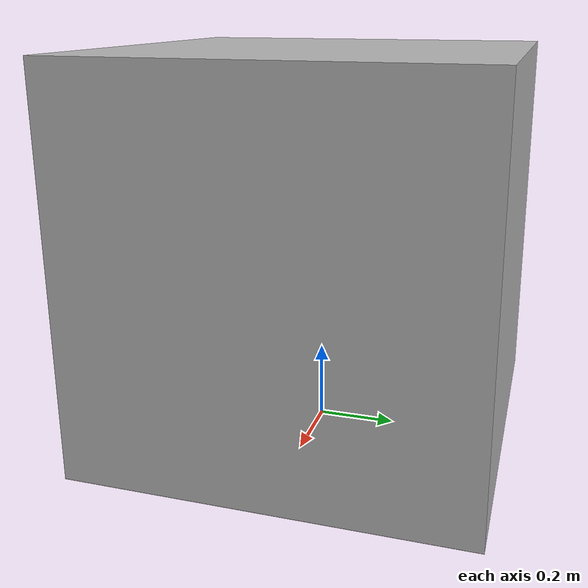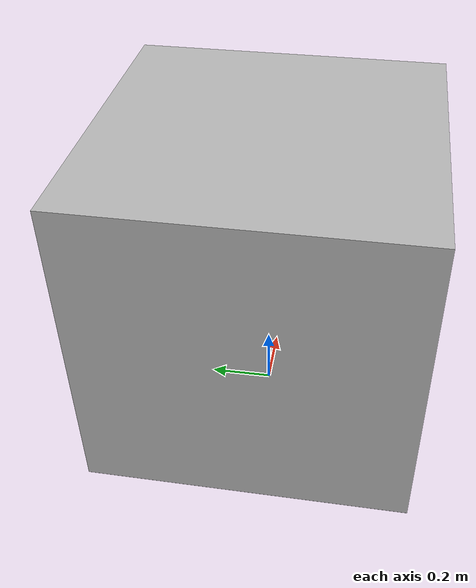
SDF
<?xml version='1.0'?>
<sdf version='1.6'>
  <model name='box_with_pusher'>
    <!-- A link to model the ground. Inertia values are not particularly
         important since the ground does not move. -->
    <link name='ground'>
      <inertial>
        <mass>1.0</mass>
        <inertia>
          <ixx>1.0</ixx>
          <ixy>0</ixy>
          <ixz>0</ixz>
          <iyy>1.0</iyy>
          <iyz>0</iyz>
          <izz>1.0</izz>
        </inertia>
      </inertial>
      <!-- TODO(SeanCurtis-TRI): the "vis" and "collision" suffixes will no
       longer be necessary when geometry roles are added. -->
      <visual name='ground_plane_vis'>
        <geometry>
          <plane>
            <normal>0.0 0.0 1.0</normal>
          </plane>
        </geometry>
      </visual>

      <collision name='ground_plane_collision'>
        <geometry>
          <plane>
            <normal>0.0 0.0 1.0</normal>
          </plane>
        </geometry>

        <surface>
          <friction>
            <ode>
              <mu>1.0</mu>
              <mu2>1.0</mu2>
            </ode>
          </friction>
        </surface>
      </collision>
    </link>

    <joint name='weld_ground' type='fixed'>
      <parent>world</parent>
      <child>ground</child>
    </joint>

    <!-- Ghost body of negligible mass. -->
    <link name='ghost_body'>
      <pose frame=''>0 0 0.5 0 0 0</pose>
      <inertial>
        <mass>1.0e-6</mass>
        <inertia>
          <ixx>1.0e-6</ixx>
          <ixy>0</ixy>
          <ixz>0</ixz>
          <iyy>1.0e-6</iyy>
          <iyz>0</iyz>
          <izz>1.0e-6</izz>
        </inertia>
      </inertial>
    </link>

    <!-- The x slider will have an actuator with a corresponding input port
         in our MultibodyPlant model so that we can apply an external force.
    -->
    <joint name='x_slider' type='prismatic'>
      <parent>world</parent>
      <child>ghost_body</child>
      <pose>0 0 0 0 0 0</pose>
      <axis>
        <xyz>1 0 0</xyz>
        <!-- Drake attaches an actuator to all joints with a non-zero effort
             limit. We do want an actuator for this joint. -->
        <limit>
          <effort>500</effort>
        </limit>
      </axis>
    </joint>

    <!-- The z slider allows the box to freely move up and down. Thus, the
         box would free fall if it wasn't for the contact with the ground. -->
    <joint name='z_slider' type='prismatic'>
      <parent>ghost_body</parent>
      <child>box</child>
      <pose>0 0 0 0 0 0</pose>
      <axis>
        <xyz>0 0 1</xyz>
        <!-- Drake attaches an actuator to all joints with a non-zero effort
             limit. We do not want an actuator for this joint and therefore we
             set a zero effort limit. -->
        <limit>
          <effort>0</effort>
        </limit>
      </axis>
    </joint>

    <!-- The model for a solid box of uniform density. -->
    <link name='box'>
      <pose>0 0 0.5 0 0 0</pose>
      <inertial>
        <mass>1.0</mass>
        <inertia>
          <ixx>0.166666666666667</ixx>
          <ixy>0</ixy>
          <ixz>0</ixz>
          <iyy>0.166666666666667</iyy>
          <iyz>0</iyz>
          <izz>0.166666666666667</izz>
        </inertia>
      </inertial>
      <visual name='visual'>
        <geometry>
          <box>
            <size>1.0 1.0 1.0</size>
          </box>
        </geometry>
      </visual>

      <collision name='collision'>
        <geometry>
          <box>
            <size>1.0 1.0 1.0</size>
          </box>
        </geometry>

        <surface>
          <friction>
            <ode>
              <mu>1.0</mu>
              <mu2>1.0</mu2>
            </ode>
          </friction>
        </surface>
      </collision>
    </link>

  </model>
</sdf>
